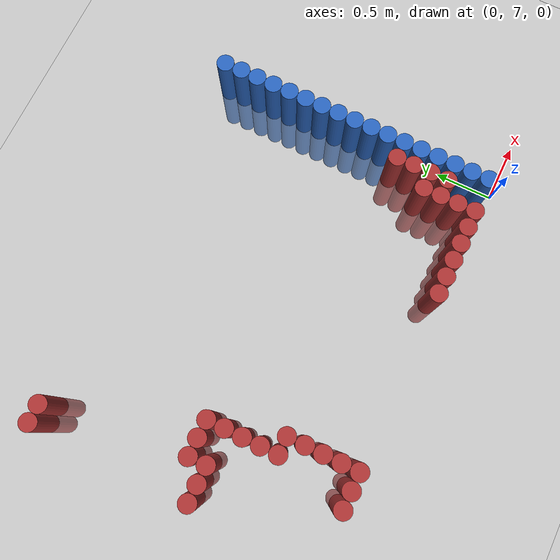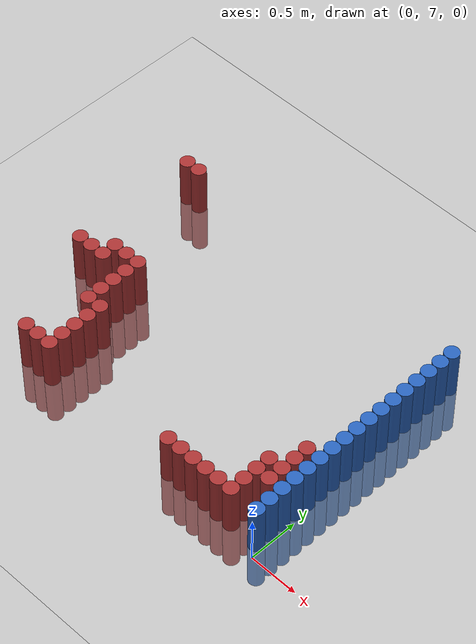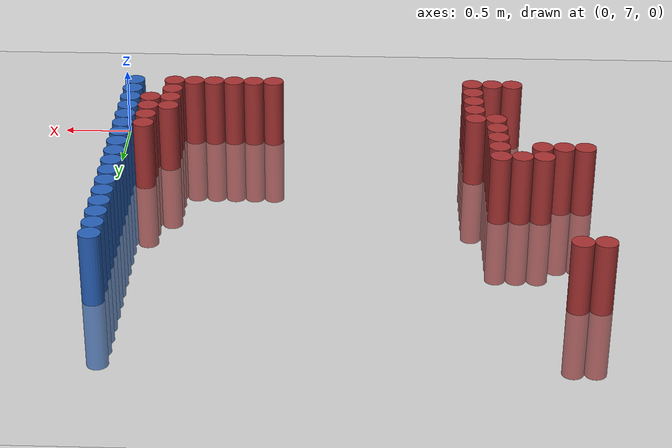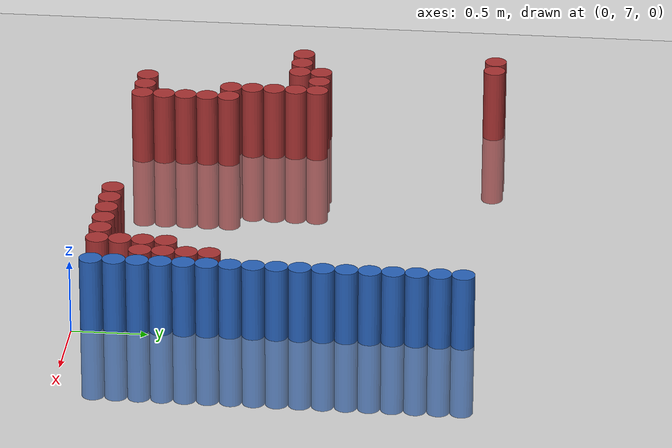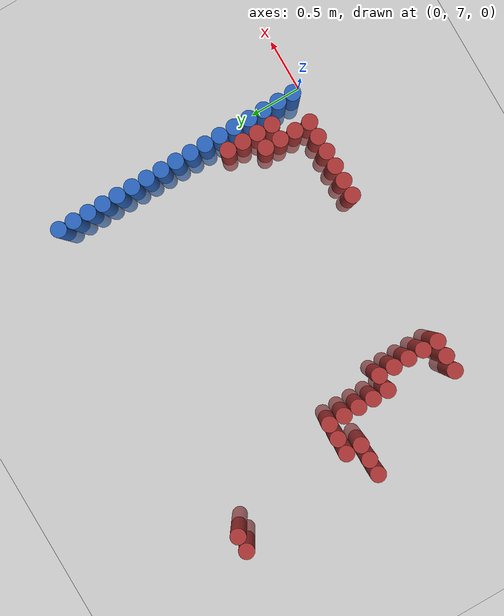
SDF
<sdf version="1.6">
 <world name="default">
  <model name="ground_plane">
   <static>1</static>
   <link name="link">
    <collision name="collision">
     <geometry><plane><normal>0 0 1</normal><size>100 100</size></plane></geometry>
     <surface><friction><ode><mu>100</mu><mu2>50</mu2></ode></friction></surface>
    </collision>
    <visual name="visual">
     <cast_shadows>0</cast_shadows>
     <geometry><plane><normal>0 0 1</normal><size>100 100</size></plane></geometry>
     <material>
      <script><uri>file://media/materials/scripts/gazebo.material</uri><name>Gazebo/Grey</name></script>
     </material>
    </visual>
   </link>
  </model>
  <model name="unit_cylinder_172">
   <static>1</static>
   <pose>-3.375000 8.175000 0.000000 0.000000 0.000000 0.000000</pose>
   <link name="link">
    <inertial>
     <mass>1</mass>
     <inertia><ixx>0.145833</ixx><ixy>0</ixy><ixz>0</ixz><iyy>0.145833</iyy><iyz>0</iyz><izz>0.125</izz></inertia>
    </inertial>
    <collision name="collision">
     <geometry><cylinder><radius>0.075000</radius><length>1</length></cylinder></geometry>
    </collision>
    <visual name="visual">
     <geometry><cylinder><radius>0.075000</radius><length>1</length></cylinder></geometry>
     <material>
      <ambient>0.648000 0.192000 0.192000 1</ambient>
      <diffuse>0.648000 0.192000 0.192000 1</diffuse>
     </material>
     <material>
      <script><name>Gazebo/Grey</name><uri>file://media/materials/scripts/gazebo.material</uri></script>
     </material>
    </visual>
   </link>
  </model>
  <model name="unit_cylinder_173">
   <static>1</static>
   <pose>-3.375000 9.525000 0.000000 0.000000 0.000000 0.000000</pose>
   <link name="link">
    <inertial>
     <mass>1</mass>
     <inertia><ixx>0.145833</ixx><ixy>0</ixy><ixz>0</ixz><iyy>0.145833</iyy><iyz>0</iyz><izz>0.125</izz></inertia>
    </inertial>
    <collision name="collision">
     <geometry><cylinder><radius>0.075000</radius><length>1</length></cylinder></geometry>
    </collision>
    <visual name="visual">
     <geometry><cylinder><radius>0.075000</radius><length>1</length></cylinder></geometry>
     <material>
      <ambient>0.648000 0.192000 0.192000 1</ambient>
      <diffuse>0.648000 0.192000 0.192000 1</diffuse>
     </material>
     <material>
      <script><name>Gazebo/Grey</name><uri>file://media/materials/scripts/gazebo.material</uri></script>
     </material>
    </visual>
   </link>
  </model>
  <model name="unit_cylinder_179">
   <static>1</static>
   <pose>-3.225000 8.175000 0.000000 0.000000 0.000000 0.000000</pose>
   <link name="link">
    <inertial>
     <mass>1</mass>
     <inertia><ixx>0.145833</ixx><ixy>0</ixy><ixz>0</ixz><iyy>0.145833</iyy><iyz>0</iyz><izz>0.125</izz></inertia>
    </inertial>
    <collision name="collision">
     <geometry><cylinder><radius>0.075000</radius><length>1</length></cylinder></geometry>
    </collision>
    <visual name="visual">
     <geometry><cylinder><radius>0.075000</radius><length>1</length></cylinder></geometry>
     <material>
      <ambient>0.648000 0.192000 0.192000 1</ambient>
      <diffuse>0.648000 0.192000 0.192000 1</diffuse>
     </material>
     <material>
      <script><name>Gazebo/Grey</name><uri>file://media/materials/scripts/gazebo.material</uri></script>
     </material>
    </visual>
   </link>
  </model>
  <model name="unit_cylinder_180">
   <static>1</static>
   <pose>-3.225000 9.525000 0.000000 0.000000 0.000000 0.000000</pose>
   <link name="link">
    <inertial>
     <mass>1</mass>
     <inertia><ixx>0.145833</ixx><ixy>0</ixy><ixz>0</ixz><iyy>0.145833</iyy><iyz>0</iyz><izz>0.125</izz></inertia>
    </inertial>
    <collision name="collision">
     <geometry><cylinder><radius>0.075000</radius><length>1</length></cylinder></geometry>
    </collision>
    <visual name="visual">
     <geometry><cylinder><radius>0.075000</radius><length>1</length></cylinder></geometry>
     <material>
      <ambient>0.648000 0.192000 0.192000 1</ambient>
      <diffuse>0.648000 0.192000 0.192000 1</diffuse>
     </material>
     <material>
      <script><name>Gazebo/Grey</name><uri>file://media/materials/scripts/gazebo.material</uri></script>
     </material>
    </visual>
   </link>
  </model>
  <model name="unit_cylinder_186">
   <static>1</static>
   <pose>-3.075000 8.175000 0.000000 0.000000 0.000000 0.000000</pose>
   <link name="link">
    <inertial>
     <mass>1</mass>
     <inertia><ixx>0.145833</ixx><ixy>0</ixy><ixz>0</ixz><iyy>0.145833</iyy><iyz>0</iyz><izz>0.125</izz></inertia>
    </inertial>
    <collision name="collision">
     <geometry><cylinder><radius>0.075000</radius><length>1</length></cylinder></geometry>
    </collision>
    <visual name="visual">
     <geometry><cylinder><radius>0.075000</radius><length>1</length></cylinder></geometry>
     <material>
      <ambient>0.648000 0.192000 0.192000 1</ambient>
      <diffuse>0.648000 0.192000 0.192000 1</diffuse>
     </material>
     <material>
      <script><name>Gazebo/Grey</name><uri>file://media/materials/scripts/gazebo.material</uri></script>
     </material>
    </visual>
   </link>
  </model>
  <model name="unit_cylinder_187">
   <static>1</static>
   <pose>-3.075000 8.325000 0.000000 0.000000 0.000000 0.000000</pose>
   <link name="link">
    <inertial>
     <mass>1</mass>
     <inertia><ixx>0.145833</ixx><ixy>0</ixy><ixz>0</ixz><iyy>0.145833</iyy><iyz>0</iyz><izz>0.125</izz></inertia>
    </inertial>
    <collision name="collision">
     <geometry><cylinder><radius>0.075000</radius><length>1</length></cylinder></geometry>
    </collision>
    <visual name="visual">
     <geometry><cylinder><radius>0.075000</radius><length>1</length></cylinder></geometry>
     <material>
      <ambient>0.648000 0.192000 0.192000 1</ambient>
      <diffuse>0.648000 0.192000 0.192000 1</diffuse>
     </material>
     <material>
      <script><name>Gazebo/Grey</name><uri>file://media/materials/scripts/gazebo.material</uri></script>
     </material>
    </visual>
   </link>
  </model>
  <model name="unit_cylinder_197">
   <static>1</static>
   <pose>-2.925000 7.125000 0.000000 0.000000 0.000000 0.000000</pose>
   <link name="link">
    <inertial>
     <mass>1</mass>
     <inertia><ixx>0.145833</ixx><ixy>0</ixy><ixz>0</ixz><iyy>0.145833</iyy><iyz>0</iyz><izz>0.125</izz></inertia>
    </inertial>
    <collision name="collision">
     <geometry><cylinder><radius>0.075000</radius><length>1</length></cylinder></geometry>
    </collision>
    <visual name="visual">
     <geometry><cylinder><radius>0.075000</radius><length>1</length></cylinder></geometry>
     <material>
      <ambient>0.648000 0.192000 0.192000 1</ambient>
      <diffuse>0.648000 0.192000 0.192000 1</diffuse>
     </material>
     <material>
      <script><name>Gazebo/Grey</name><uri>file://media/materials/scripts/gazebo.material</uri></script>
     </material>
    </visual>
   </link>
  </model>
  <model name="unit_cylinder_198">
   <static>1</static>
   <pose>-2.925000 8.325000 0.000000 0.000000 0.000000 0.000000</pose>
   <link name="link">
    <inertial>
     <mass>1</mass>
     <inertia><ixx>0.145833</ixx><ixy>0</ixy><ixz>0</ixz><iyy>0.145833</iyy><iyz>0</iyz><izz>0.125</izz></inertia>
    </inertial>
    <collision name="collision">
     <geometry><cylinder><radius>0.075000</radius><length>1</length></cylinder></geometry>
    </collision>
    <visual name="visual">
     <geometry><cylinder><radius>0.075000</radius><length>1</length></cylinder></geometry>
     <material>
      <ambient>0.648000 0.192000 0.192000 1</ambient>
      <diffuse>0.648000 0.192000 0.192000 1</diffuse>
     </material>
     <material>
      <script><name>Gazebo/Grey</name><uri>file://media/materials/scripts/gazebo.material</uri></script>
     </material>
    </visual>
   </link>
  </model>
  <model name="unit_cylinder_201">
   <static>1</static>
   <pose>-2.775000 7.125000 0.000000 0.000000 0.000000 0.000000</pose>
   <link name="link">
    <inertial>
     <mass>1</mass>
     <inertia><ixx>0.145833</ixx><ixy>0</ixy><ixz>0</ixz><iyy>0.145833</iyy><iyz>0</iyz><izz>0.125</izz></inertia>
    </inertial>
    <collision name="collision">
     <geometry><cylinder><radius>0.075000</radius><length>1</length></cylinder></geometry>
    </collision>
    <visual name="visual">
     <geometry><cylinder><radius>0.075000</radius><length>1</length></cylinder></geometry>
     <material>
      <ambient>0.648000 0.192000 0.192000 1</ambient>
      <diffuse>0.648000 0.192000 0.192000 1</diffuse>
     </material>
     <material>
      <script><name>Gazebo/Grey</name><uri>file://media/materials/scripts/gazebo.material</uri></script>
     </material>
    </visual>
   </link>
  </model>
  <model name="unit_cylinder_202">
   <static>1</static>
   <pose>-2.775000 7.725000 0.000000 0.000000 0.000000 0.000000</pose>
   <link name="link">
    <inertial>
     <mass>1</mass>
     <inertia><ixx>0.145833</ixx><ixy>0</ixy><ixz>0</ixz><iyy>0.145833</iyy><iyz>0</iyz><izz>0.125</izz></inertia>
    </inertial>
    <collision name="collision">
     <geometry><cylinder><radius>0.075000</radius><length>1</length></cylinder></geometry>
    </collision>
    <visual name="visual">
     <geometry><cylinder><radius>0.075000</radius><length>1</length></cylinder></geometry>
     <material>
      <ambient>0.648000 0.192000 0.192000 1</ambient>
      <diffuse>0.648000 0.192000 0.192000 1</diffuse>
     </material>
     <material>
      <script><name>Gazebo/Grey</name><uri>file://media/materials/scripts/gazebo.material</uri></script>
     </material>
    </visual>
   </link>
  </model>
  <model name="unit_cylinder_203">
   <static>1</static>
   <pose>-2.775000 7.875000 0.000000 0.000000 0.000000 0.000000</pose>
   <link name="link">
    <inertial>
     <mass>1</mass>
     <inertia><ixx>0.145833</ixx><ixy>0</ixy><ixz>0</ixz><iyy>0.145833</iyy><iyz>0</iyz><izz>0.125</izz></inertia>
    </inertial>
    <collision name="collision">
     <geometry><cylinder><radius>0.075000</radius><length>1</length></cylinder></geometry>
    </collision>
    <visual name="visual">
     <geometry><cylinder><radius>0.075000</radius><length>1</length></cylinder></geometry>
     <material>
      <ambient>0.648000 0.192000 0.192000 1</ambient>
      <diffuse>0.648000 0.192000 0.192000 1</diffuse>
     </material>
     <material>
      <script><name>Gazebo/Grey</name><uri>file://media/materials/scripts/gazebo.material</uri></script>
     </material>
    </visual>
   </link>
  </model>
  <model name="unit_cylinder_204">
   <static>1</static>
   <pose>-2.775000 8.025000 0.000000 0.000000 0.000000 0.000000</pose>
   <link name="link">
    <inertial>
     <mass>1</mass>
     <inertia><ixx>0.145833</ixx><ixy>0</ixy><ixz>0</ixz><iyy>0.145833</iyy><iyz>0</iyz><izz>0.125</izz></inertia>
    </inertial>
    <collision name="collision">
     <geometry><cylinder><radius>0.075000</radius><length>1</length></cylinder></geometry>
    </collision>
    <visual name="visual">
     <geometry><cylinder><radius>0.075000</radius><length>1</length></cylinder></geometry>
     <material>
      <ambient>0.648000 0.192000 0.192000 1</ambient>
      <diffuse>0.648000 0.192000 0.192000 1</diffuse>
     </material>
     <material>
      <script><name>Gazebo/Grey</name><uri>file://media/materials/scripts/gazebo.material</uri></script>
     </material>
    </visual>
   </link>
  </model>
  <model name="unit_cylinder_205">
   <static>1</static>
   <pose>-2.775000 8.175000 0.000000 0.000000 0.000000 0.000000</pose>
   <link name="link">
    <inertial>
     <mass>1</mass>
     <inertia><ixx>0.145833</ixx><ixy>0</ixy><ixz>0</ixz><iyy>0.145833</iyy><iyz>0</iyz><izz>0.125</izz></inertia>
    </inertial>
    <collision name="collision">
     <geometry><cylinder><radius>0.075000</radius><length>1</length></cylinder></geometry>
    </collision>
    <visual name="visual">
     <geometry><cylinder><radius>0.075000</radius><length>1</length></cylinder></geometry>
     <material>
      <ambient>0.648000 0.192000 0.192000 1</ambient>
      <diffuse>0.648000 0.192000 0.192000 1</diffuse>
     </material>
     <material>
      <script><name>Gazebo/Grey</name><uri>file://media/materials/scripts/gazebo.material</uri></script>
     </material>
    </visual>
   </link>
  </model>
  <model name="unit_cylinder_206">
   <static>1</static>
   <pose>-2.775000 8.325000 0.000000 0.000000 0.000000 0.000000</pose>
   <link name="link">
    <inertial>
     <mass>1</mass>
     <inertia><ixx>0.145833</ixx><ixy>0</ixy><ixz>0</ixz><iyy>0.145833</iyy><iyz>0</iyz><izz>0.125</izz></inertia>
    </inertial>
    <collision name="collision">
     <geometry><cylinder><radius>0.075000</radius><length>1</length></cylinder></geometry>
    </collision>
    <visual name="visual">
     <geometry><cylinder><radius>0.075000</radius><length>1</length></cylinder></geometry>
     <material>
      <ambient>0.648000 0.192000 0.192000 1</ambient>
      <diffuse>0.648000 0.192000 0.192000 1</diffuse>
     </material>
     <material>
      <script><name>Gazebo/Grey</name><uri>file://media/materials/scripts/gazebo.material</uri></script>
     </material>
    </visual>
   </link>
  </model>
  <model name="unit_cylinder_210">
   <static>1</static>
   <pose>-2.625000 7.125000 0.000000 0.000000 0.000000 0.000000</pose>
   <link name="link">
    <inertial>
     <mass>1</mass>
     <inertia><ixx>0.145833</ixx><ixy>0</ixy><ixz>0</ixz><iyy>0.145833</iyy><iyz>0</iyz><izz>0.125</izz></inertia>
    </inertial>
    <collision name="collision">
     <geometry><cylinder><radius>0.075000</radius><length>1</length></cylinder></geometry>
    </collision>
    <visual name="visual">
     <geometry><cylinder><radius>0.075000</radius><length>1</length></cylinder></geometry>
     <material>
      <ambient>0.648000 0.192000 0.192000 1</ambient>
      <diffuse>0.648000 0.192000 0.192000 1</diffuse>
     </material>
     <material>
      <script><name>Gazebo/Grey</name><uri>file://media/materials/scripts/gazebo.material</uri></script>
     </material>
    </visual>
   </link>
  </model>
  <model name="unit_cylinder_211">
   <static>1</static>
   <pose>-2.625000 7.275000 0.000000 0.000000 0.000000 0.000000</pose>
   <link name="link">
    <inertial>
     <mass>1</mass>
     <inertia><ixx>0.145833</ixx><ixy>0</ixy><ixz>0</ixz><iyy>0.145833</iyy><iyz>0</iyz><izz>0.125</izz></inertia>
    </inertial>
    <collision name="collision">
     <geometry><cylinder><radius>0.075000</radius><length>1</length></cylinder></geometry>
    </collision>
    <visual name="visual">
     <geometry><cylinder><radius>0.075000</radius><length>1</length></cylinder></geometry>
     <material>
      <ambient>0.648000 0.192000 0.192000 1</ambient>
      <diffuse>0.648000 0.192000 0.192000 1</diffuse>
     </material>
     <material>
      <script><name>Gazebo/Grey</name><uri>file://media/materials/scripts/gazebo.material</uri></script>
     </material>
    </visual>
   </link>
  </model>
  <model name="unit_cylinder_212">
   <static>1</static>
   <pose>-2.625000 7.425000 0.000000 0.000000 0.000000 0.000000</pose>
   <link name="link">
    <inertial>
     <mass>1</mass>
     <inertia><ixx>0.145833</ixx><ixy>0</ixy><ixz>0</ixz><iyy>0.145833</iyy><iyz>0</iyz><izz>0.125</izz></inertia>
    </inertial>
    <collision name="collision">
     <geometry><cylinder><radius>0.075000</radius><length>1</length></cylinder></geometry>
    </collision>
    <visual name="visual">
     <geometry><cylinder><radius>0.075000</radius><length>1</length></cylinder></geometry>
     <material>
      <ambient>0.648000 0.192000 0.192000 1</ambient>
      <diffuse>0.648000 0.192000 0.192000 1</diffuse>
     </material>
     <material>
      <script><name>Gazebo/Grey</name><uri>file://media/materials/scripts/gazebo.material</uri></script>
     </material>
    </visual>
   </link>
  </model>
  <model name="unit_cylinder_213">
   <static>1</static>
   <pose>-2.625000 7.575000 0.000000 0.000000 0.000000 0.000000</pose>
   <link name="link">
    <inertial>
     <mass>1</mass>
     <inertia><ixx>0.145833</ixx><ixy>0</ixy><ixz>0</ixz><iyy>0.145833</iyy><iyz>0</iyz><izz>0.125</izz></inertia>
    </inertial>
    <collision name="collision">
     <geometry><cylinder><radius>0.075000</radius><length>1</length></cylinder></geometry>
    </collision>
    <visual name="visual">
     <geometry><cylinder><radius>0.075000</radius><length>1</length></cylinder></geometry>
     <material>
      <ambient>0.648000 0.192000 0.192000 1</ambient>
      <diffuse>0.648000 0.192000 0.192000 1</diffuse>
     </material>
     <material>
      <script><name>Gazebo/Grey</name><uri>file://media/materials/scripts/gazebo.material</uri></script>
     </material>
    </visual>
   </link>
  </model>
  <model name="unit_cylinder_214">
   <static>1</static>
   <pose>-2.625000 7.725000 0.000000 0.000000 0.000000 0.000000</pose>
   <link name="link">
    <inertial>
     <mass>1</mass>
     <inertia><ixx>0.145833</ixx><ixy>0</ixy><ixz>0</ixz><iyy>0.145833</iyy><iyz>0</iyz><izz>0.125</izz></inertia>
    </inertial>
    <collision name="collision">
     <geometry><cylinder><radius>0.075000</radius><length>1</length></cylinder></geometry>
    </collision>
    <visual name="visual">
     <geometry><cylinder><radius>0.075000</radius><length>1</length></cylinder></geometry>
     <material>
      <ambient>0.648000 0.192000 0.192000 1</ambient>
      <diffuse>0.648000 0.192000 0.192000 1</diffuse>
     </material>
     <material>
      <script><name>Gazebo/Grey</name><uri>file://media/materials/scripts/gazebo.material</uri></script>
     </material>
    </visual>
   </link>
  </model>
  <model name="unit_cylinder_222">
   <static>1</static>
   <pose>-1.125000 7.125000 0.000000 0.000000 0.000000 0.000000</pose>
   <link name="link">
    <inertial>
     <mass>1</mass>
     <inertia><ixx>0.145833</ixx><ixy>0</ixy><ixz>0</ixz><iyy>0.145833</iyy><iyz>0</iyz><izz>0.125</izz></inertia>
    </inertial>
    <collision name="collision">
     <geometry><cylinder><radius>0.075000</radius><length>1</length></cylinder></geometry>
    </collision>
    <visual name="visual">
     <geometry><cylinder><radius>0.075000</radius><length>1</length></cylinder></geometry>
     <material>
      <ambient>0.648000 0.192000 0.192000 1</ambient>
      <diffuse>0.648000 0.192000 0.192000 1</diffuse>
     </material>
     <material>
      <script><name>Gazebo/Grey</name><uri>file://media/materials/scripts/gazebo.material</uri></script>
     </material>
    </visual>
   </link>
  </model>
  <model name="unit_cylinder_225">
   <static>1</static>
   <pose>-0.975000 7.125000 0.000000 0.000000 0.000000 0.000000</pose>
   <link name="link">
    <inertial>
     <mass>1</mass>
     <inertia><ixx>0.145833</ixx><ixy>0</ixy><ixz>0</ixz><iyy>0.145833</iyy><iyz>0</iyz><izz>0.125</izz></inertia>
    </inertial>
    <collision name="collision">
     <geometry><cylinder><radius>0.075000</radius><length>1</length></cylinder></geometry>
    </collision>
    <visual name="visual">
     <geometry><cylinder><radius>0.075000</radius><length>1</length></cylinder></geometry>
     <material>
      <ambient>0.648000 0.192000 0.192000 1</ambient>
      <diffuse>0.648000 0.192000 0.192000 1</diffuse>
     </material>
     <material>
      <script><name>Gazebo/Grey</name><uri>file://media/materials/scripts/gazebo.material</uri></script>
     </material>
    </visual>
   </link>
  </model>
  <model name="unit_cylinder_230">
   <static>1</static>
   <pose>-0.825000 7.125000 0.000000 0.000000 0.000000 0.000000</pose>
   <link name="link">
    <inertial>
     <mass>1</mass>
     <inertia><ixx>0.145833</ixx><ixy>0</ixy><ixz>0</ixz><iyy>0.145833</iyy><iyz>0</iyz><izz>0.125</izz></inertia>
    </inertial>
    <collision name="collision">
     <geometry><cylinder><radius>0.075000</radius><length>1</length></cylinder></geometry>
    </collision>
    <visual name="visual">
     <geometry><cylinder><radius>0.075000</radius><length>1</length></cylinder></geometry>
     <material>
      <ambient>0.648000 0.192000 0.192000 1</ambient>
      <diffuse>0.648000 0.192000 0.192000 1</diffuse>
     </material>
     <material>
      <script><name>Gazebo/Grey</name><uri>file://media/materials/scripts/gazebo.material</uri></script>
     </material>
    </visual>
   </link>
  </model>
  <model name="unit_cylinder_239">
   <static>1</static>
   <pose>-0.675000 7.125000 0.000000 0.000000 0.000000 0.000000</pose>
   <link name="link">
    <inertial>
     <mass>1</mass>
     <inertia><ixx>0.145833</ixx><ixy>0</ixy><ixz>0</ixz><iyy>0.145833</iyy><iyz>0</iyz><izz>0.125</izz></inertia>
    </inertial>
    <collision name="collision">
     <geometry><cylinder><radius>0.075000</radius><length>1</length></cylinder></geometry>
    </collision>
    <visual name="visual">
     <geometry><cylinder><radius>0.075000</radius><length>1</length></cylinder></geometry>
     <material>
      <ambient>0.648000 0.192000 0.192000 1</ambient>
      <diffuse>0.648000 0.192000 0.192000 1</diffuse>
     </material>
     <material>
      <script><name>Gazebo/Grey</name><uri>file://media/materials/scripts/gazebo.material</uri></script>
     </material>
    </visual>
   </link>
  </model>
  <model name="unit_cylinder_241">
   <static>1</static>
   <pose>-0.525000 7.125000 0.000000 0.000000 0.000000 0.000000</pose>
   <link name="link">
    <inertial>
     <mass>1</mass>
     <inertia><ixx>0.145833</ixx><ixy>0</ixy><ixz>0</ixz><iyy>0.145833</iyy><iyz>0</iyz><izz>0.125</izz></inertia>
    </inertial>
    <collision name="collision">
     <geometry><cylinder><radius>0.075000</radius><length>1</length></cylinder></geometry>
    </collision>
    <visual name="visual">
     <geometry><cylinder><radius>0.075000</radius><length>1</length></cylinder></geometry>
     <material>
      <ambient>0.648000 0.192000 0.192000 1</ambient>
      <diffuse>0.648000 0.192000 0.192000 1</diffuse>
     </material>
     <material>
      <script><name>Gazebo/Grey</name><uri>file://media/materials/scripts/gazebo.material</uri></script>
     </material>
    </visual>
   </link>
  </model>
  <model name="unit_cylinder_253">
   <static>1</static>
   <pose>-0.375000 7.125000 0.000000 0.000000 0.000000 0.000000</pose>
   <link name="link">
    <inertial>
     <mass>1</mass>
     <inertia><ixx>0.145833</ixx><ixy>0</ixy><ixz>0</ixz><iyy>0.145833</iyy><iyz>0</iyz><izz>0.125</izz></inertia>
    </inertial>
    <collision name="collision">
     <geometry><cylinder><radius>0.075000</radius><length>1</length></cylinder></geometry>
    </collision>
    <visual name="visual">
     <geometry><cylinder><radius>0.075000</radius><length>1</length></cylinder></geometry>
     <material>
      <ambient>0.648000 0.192000 0.192000 1</ambient>
      <diffuse>0.648000 0.192000 0.192000 1</diffuse>
     </material>
     <material>
      <script><name>Gazebo/Grey</name><uri>file://media/materials/scripts/gazebo.material</uri></script>
     </material>
    </visual>
   </link>
  </model>
  <model name="unit_cylinder_254">
   <static>1</static>
   <pose>-0.375000 7.275000 0.000000 0.000000 0.000000 0.000000</pose>
   <link name="link">
    <inertial>
     <mass>1</mass>
     <inertia><ixx>0.145833</ixx><ixy>0</ixy><ixz>0</ixz><iyy>0.145833</iyy><iyz>0</iyz><izz>0.125</izz></inertia>
    </inertial>
    <collision name="collision">
     <geometry><cylinder><radius>0.075000</radius><length>1</length></cylinder></geometry>
    </collision>
    <visual name="visual">
     <geometry><cylinder><radius>0.075000</radius><length>1</length></cylinder></geometry>
     <material>
      <ambient>0.648000 0.192000 0.192000 1</ambient>
      <diffuse>0.648000 0.192000 0.192000 1</diffuse>
     </material>
     <material>
      <script><name>Gazebo/Grey</name><uri>file://media/materials/scripts/gazebo.material</uri></script>
     </material>
    </visual>
   </link>
  </model>
  <model name="unit_cylinder_255">
   <static>1</static>
   <pose>-0.375000 7.425000 0.000000 0.000000 0.000000 0.000000</pose>
   <link name="link">
    <inertial>
     <mass>1</mass>
     <inertia><ixx>0.145833</ixx><ixy>0</ixy><ixz>0</ixz><iyy>0.145833</iyy><iyz>0</iyz><izz>0.125</izz></inertia>
    </inertial>
    <collision name="collision">
     <geometry><cylinder><radius>0.075000</radius><length>1</length></cylinder></geometry>
    </collision>
    <visual name="visual">
     <geometry><cylinder><radius>0.075000</radius><length>1</length></cylinder></geometry>
     <material>
      <ambient>0.648000 0.192000 0.192000 1</ambient>
      <diffuse>0.648000 0.192000 0.192000 1</diffuse>
     </material>
     <material>
      <script><name>Gazebo/Grey</name><uri>file://media/materials/scripts/gazebo.material</uri></script>
     </material>
    </visual>
   </link>
  </model>
  <model name="unit_cylinder_256">
   <static>1</static>
   <pose>-0.375000 7.575000 0.000000 0.000000 0.000000 0.000000</pose>
   <link name="link">
    <inertial>
     <mass>1</mass>
     <inertia><ixx>0.145833</ixx><ixy>0</ixy><ixz>0</ixz><iyy>0.145833</iyy><iyz>0</iyz><izz>0.125</izz></inertia>
    </inertial>
    <collision name="collision">
     <geometry><cylinder><radius>0.075000</radius><length>1</length></cylinder></geometry>
    </collision>
    <visual name="visual">
     <geometry><cylinder><radius>0.075000</radius><length>1</length></cylinder></geometry>
     <material>
      <ambient>0.648000 0.192000 0.192000 1</ambient>
      <diffuse>0.648000 0.192000 0.192000 1</diffuse>
     </material>
     <material>
      <script><name>Gazebo/Grey</name><uri>file://media/materials/scripts/gazebo.material</uri></script>
     </material>
    </visual>
   </link>
  </model>
  <model name="unit_cylinder_259">
   <static>1</static>
   <pose>-0.225000 7.425000 0.000000 0.000000 0.000000 0.000000</pose>
   <link name="link">
    <inertial>
     <mass>1</mass>
     <inertia><ixx>0.145833</ixx><ixy>0</ixy><ixz>0</ixz><iyy>0.145833</iyy><iyz>0</iyz><izz>0.125</izz></inertia>
    </inertial>
    <collision name="collision">
     <geometry><cylinder><radius>0.075000</radius><length>1</length></cylinder></geometry>
    </collision>
    <visual name="visual">
     <geometry><cylinder><radius>0.075000</radius><length>1</length></cylinder></geometry>
     <material>
      <ambient>0.648000 0.192000 0.192000 1</ambient>
      <diffuse>0.648000 0.192000 0.192000 1</diffuse>
     </material>
     <material>
      <script><name>Gazebo/Grey</name><uri>file://media/materials/scripts/gazebo.material</uri></script>
     </material>
    </visual>
   </link>
  </model>
  <model name="unit_cylinder_260">
   <static>1</static>
   <pose>-0.225000 7.575000 0.000000 0.000000 0.000000 0.000000</pose>
   <link name="link">
    <inertial>
     <mass>1</mass>
     <inertia><ixx>0.145833</ixx><ixy>0</ixy><ixz>0</ixz><iyy>0.145833</iyy><iyz>0</iyz><izz>0.125</izz></inertia>
    </inertial>
    <collision name="collision">
     <geometry><cylinder><radius>0.075000</radius><length>1</length></cylinder></geometry>
    </collision>
    <visual name="visual">
     <geometry><cylinder><radius>0.075000</radius><length>1</length></cylinder></geometry>
     <material>
      <ambient>0.648000 0.192000 0.192000 1</ambient>
      <diffuse>0.648000 0.192000 0.192000 1</diffuse>
     </material>
     <material>
      <script><name>Gazebo/Grey</name><uri>file://media/materials/scripts/gazebo.material</uri></script>
     </material>
    </visual>
   </link>
  </model>
  <model name="unit_cylinder_261">
   <static>1</static>
   <pose>-0.225000 7.725000 0.000000 0.000000 0.000000 0.000000</pose>
   <link name="link">
    <inertial>
     <mass>1</mass>
     <inertia><ixx>0.145833</ixx><ixy>0</ixy><ixz>0</ixz><iyy>0.145833</iyy><iyz>0</iyz><izz>0.125</izz></inertia>
    </inertial>
    <collision name="collision">
     <geometry><cylinder><radius>0.075000</radius><length>1</length></cylinder></geometry>
    </collision>
    <visual name="visual">
     <geometry><cylinder><radius>0.075000</radius><length>1</length></cylinder></geometry>
     <material>
      <ambient>0.648000 0.192000 0.192000 1</ambient>
      <diffuse>0.648000 0.192000 0.192000 1</diffuse>
     </material>
     <material>
      <script><name>Gazebo/Grey</name><uri>file://media/materials/scripts/gazebo.material</uri></script>
     </material>
    </visual>
   </link>
  </model>
  <model name="unit_cylinder_262">
   <static>1</static>
   <pose>-0.225000 7.875000 0.000000 0.000000 0.000000 0.000000</pose>
   <link name="link">
    <inertial>
     <mass>1</mass>
     <inertia><ixx>0.145833</ixx><ixy>0</ixy><ixz>0</ixz><iyy>0.145833</iyy><iyz>0</iyz><izz>0.125</izz></inertia>
    </inertial>
    <collision name="collision">
     <geometry><cylinder><radius>0.075000</radius><length>1</length></cylinder></geometry>
    </collision>
    <visual name="visual">
     <geometry><cylinder><radius>0.075000</radius><length>1</length></cylinder></geometry>
     <material>
      <ambient>0.648000 0.192000 0.192000 1</ambient>
      <diffuse>0.648000 0.192000 0.192000 1</diffuse>
     </material>
     <material>
      <script><name>Gazebo/Grey</name><uri>file://media/materials/scripts/gazebo.material</uri></script>
     </material>
    </visual>
   </link>
  </model>
  <model name="unit_cylinder_276">
   <static>1</static>
   <pose>-0.075000 7.125000 0.000000 0.000000 0.000000 0.000000</pose>
   <link name="link">
    <inertial>
     <mass>1</mass>
     <inertia><ixx>0.145833</ixx><ixy>0</ixy><ixz>0</ixz><iyy>0.145833</iyy><iyz>0</iyz><izz>0.125</izz></inertia>
    </inertial>
    <collision name="collision">
     <geometry><cylinder><radius>0.075000</radius><length>1</length></cylinder></geometry>
    </collision>
    <visual name="visual">
     <geometry><cylinder><radius>0.075000</radius><length>1</length></cylinder></geometry>
     <material>
      <ambient>0.152000 0.379000 0.720000 1</ambient>
      <diffuse>0.152000 0.379000 0.720000 1</diffuse>
     </material>
     <material>
      <script><name>Gazebo/Grey</name><uri>file://media/materials/scripts/gazebo.material</uri></script>
     </material>
    </visual>
   </link>
  </model>
  <model name="unit_cylinder_277">
   <static>1</static>
   <pose>-0.075000 7.275000 0.000000 0.000000 0.000000 0.000000</pose>
   <link name="link">
    <inertial>
     <mass>1</mass>
     <inertia><ixx>0.145833</ixx><ixy>0</ixy><ixz>0</ixz><iyy>0.145833</iyy><iyz>0</iyz><izz>0.125</izz></inertia>
    </inertial>
    <collision name="collision">
     <geometry><cylinder><radius>0.075000</radius><length>1</length></cylinder></geometry>
    </collision>
    <visual name="visual">
     <geometry><cylinder><radius>0.075000</radius><length>1</length></cylinder></geometry>
     <material>
      <ambient>0.152000 0.379000 0.720000 1</ambient>
      <diffuse>0.152000 0.379000 0.720000 1</diffuse>
     </material>
     <material>
      <script><name>Gazebo/Grey</name><uri>file://media/materials/scripts/gazebo.material</uri></script>
     </material>
    </visual>
   </link>
  </model>
  <model name="unit_cylinder_278">
   <static>1</static>
   <pose>-0.075000 7.425000 0.000000 0.000000 0.000000 0.000000</pose>
   <link name="link">
    <inertial>
     <mass>1</mass>
     <inertia><ixx>0.145833</ixx><ixy>0</ixy><ixz>0</ixz><iyy>0.145833</iyy><iyz>0</iyz><izz>0.125</izz></inertia>
    </inertial>
    <collision name="collision">
     <geometry><cylinder><radius>0.075000</radius><length>1</length></cylinder></geometry>
    </collision>
    <visual name="visual">
     <geometry><cylinder><radius>0.075000</radius><length>1</length></cylinder></geometry>
     <material>
      <ambient>0.152000 0.379000 0.720000 1</ambient>
      <diffuse>0.152000 0.379000 0.720000 1</diffuse>
     </material>
     <material>
      <script><name>Gazebo/Grey</name><uri>file://media/materials/scripts/gazebo.material</uri></script>
     </material>
    </visual>
   </link>
  </model>
  <model name="unit_cylinder_279">
   <static>1</static>
   <pose>-0.075000 7.575000 0.000000 0.000000 0.000000 0.000000</pose>
   <link name="link">
    <inertial>
     <mass>1</mass>
     <inertia><ixx>0.145833</ixx><ixy>0</ixy><ixz>0</ixz><iyy>0.145833</iyy><iyz>0</iyz><izz>0.125</izz></inertia>
    </inertial>
    <collision name="collision">
     <geometry><cylinder><radius>0.075000</radius><length>1</length></cylinder></geometry>
    </collision>
    <visual name="visual">
     <geometry><cylinder><radius>0.075000</radius><length>1</length></cylinder></geometry>
     <material>
      <ambient>0.152000 0.379000 0.720000 1</ambient>
      <diffuse>0.152000 0.379000 0.720000 1</diffuse>
     </material>
     <material>
      <script><name>Gazebo/Grey</name><uri>file://media/materials/scripts/gazebo.material</uri></script>
     </material>
    </visual>
   </link>
  </model>
  <model name="unit_cylinder_280">
   <static>1</static>
   <pose>-0.075000 7.725000 0.000000 0.000000 0.000000 0.000000</pose>
   <link name="link">
    <inertial>
     <mass>1</mass>
     <inertia><ixx>0.145833</ixx><ixy>0</ixy><ixz>0</ixz><iyy>0.145833</iyy><iyz>0</iyz><izz>0.125</izz></inertia>
    </inertial>
    <collision name="collision">
     <geometry><cylinder><radius>0.075000</radius><length>1</length></cylinder></geometry>
    </collision>
    <visual name="visual">
     <geometry><cylinder><radius>0.075000</radius><length>1</length></cylinder></geometry>
     <material>
      <ambient>0.152000 0.379000 0.720000 1</ambient>
      <diffuse>0.152000 0.379000 0.720000 1</diffuse>
     </material>
     <material>
      <script><name>Gazebo/Grey</name><uri>file://media/materials/scripts/gazebo.material</uri></script>
     </material>
    </visual>
   </link>
  </model>
  <model name="unit_cylinder_281">
   <static>1</static>
   <pose>-0.075000 7.875000 0.000000 0.000000 0.000000 0.000000</pose>
   <link name="link">
    <inertial>
     <mass>1</mass>
     <inertia><ixx>0.145833</ixx><ixy>0</ixy><ixz>0</ixz><iyy>0.145833</iyy><iyz>0</iyz><izz>0.125</izz></inertia>
    </inertial>
    <collision name="collision">
     <geometry><cylinder><radius>0.075000</radius><length>1</length></cylinder></geometry>
    </collision>
    <visual name="visual">
     <geometry><cylinder><radius>0.075000</radius><length>1</length></cylinder></geometry>
     <material>
      <ambient>0.152000 0.379000 0.720000 1</ambient>
      <diffuse>0.152000 0.379000 0.720000 1</diffuse>
     </material>
     <material>
      <script><name>Gazebo/Grey</name><uri>file://media/materials/scripts/gazebo.material</uri></script>
     </material>
    </visual>
   </link>
  </model>
  <model name="unit_cylinder_282">
   <static>1</static>
   <pose>-0.075000 8.025000 0.000000 0.000000 0.000000 0.000000</pose>
   <link name="link">
    <inertial>
     <mass>1</mass>
     <inertia><ixx>0.145833</ixx><ixy>0</ixy><ixz>0</ixz><iyy>0.145833</iyy><iyz>0</iyz><izz>0.125</izz></inertia>
    </inertial>
    <collision name="collision">
     <geometry><cylinder><radius>0.075000</radius><length>1</length></cylinder></geometry>
    </collision>
    <visual name="visual">
     <geometry><cylinder><radius>0.075000</radius><length>1</length></cylinder></geometry>
     <material>
      <ambient>0.152000 0.379000 0.720000 1</ambient>
      <diffuse>0.152000 0.379000 0.720000 1</diffuse>
     </material>
     <material>
      <script><name>Gazebo/Grey</name><uri>file://media/materials/scripts/gazebo.material</uri></script>
     </material>
    </visual>
   </link>
  </model>
  <model name="unit_cylinder_283">
   <static>1</static>
   <pose>-0.075000 8.175000 0.000000 0.000000 0.000000 0.000000</pose>
   <link name="link">
    <inertial>
     <mass>1</mass>
     <inertia><ixx>0.145833</ixx><ixy>0</ixy><ixz>0</ixz><iyy>0.145833</iyy><iyz>0</iyz><izz>0.125</izz></inertia>
    </inertial>
    <collision name="collision">
     <geometry><cylinder><radius>0.075000</radius><length>1</length></cylinder></geometry>
    </collision>
    <visual name="visual">
     <geometry><cylinder><radius>0.075000</radius><length>1</length></cylinder></geometry>
     <material>
      <ambient>0.152000 0.379000 0.720000 1</ambient>
      <diffuse>0.152000 0.379000 0.720000 1</diffuse>
     </material>
     <material>
      <script><name>Gazebo/Grey</name><uri>file://media/materials/scripts/gazebo.material</uri></script>
     </material>
    </visual>
   </link>
  </model>
  <model name="unit_cylinder_284">
   <static>1</static>
   <pose>-0.075000 8.325000 0.000000 0.000000 0.000000 0.000000</pose>
   <link name="link">
    <inertial>
     <mass>1</mass>
     <inertia><ixx>0.145833</ixx><ixy>0</ixy><ixz>0</ixz><iyy>0.145833</iyy><iyz>0</iyz><izz>0.125</izz></inertia>
    </inertial>
    <collision name="collision">
     <geometry><cylinder><radius>0.075000</radius><length>1</length></cylinder></geometry>
    </collision>
    <visual name="visual">
     <geometry><cylinder><radius>0.075000</radius><length>1</length></cylinder></geometry>
     <material>
      <ambient>0.152000 0.379000 0.720000 1</ambient>
      <diffuse>0.152000 0.379000 0.720000 1</diffuse>
     </material>
     <material>
      <script><name>Gazebo/Grey</name><uri>file://media/materials/scripts/gazebo.material</uri></script>
     </material>
    </visual>
   </link>
  </model>
  <model name="unit_cylinder_285">
   <static>1</static>
   <pose>-0.075000 8.475000 0.000000 0.000000 0.000000 0.000000</pose>
   <link name="link">
    <inertial>
     <mass>1</mass>
     <inertia><ixx>0.145833</ixx><ixy>0</ixy><ixz>0</ixz><iyy>0.145833</iyy><iyz>0</iyz><izz>0.125</izz></inertia>
    </inertial>
    <collision name="collision">
     <geometry><cylinder><radius>0.075000</radius><length>1</length></cylinder></geometry>
    </collision>
    <visual name="visual">
     <geometry><cylinder><radius>0.075000</radius><length>1</length></cylinder></geometry>
     <material>
      <ambient>0.152000 0.379000 0.720000 1</ambient>
      <diffuse>0.152000 0.379000 0.720000 1</diffuse>
     </material>
     <material>
      <script><name>Gazebo/Grey</name><uri>file://media/materials/scripts/gazebo.material</uri></script>
     </material>
    </visual>
   </link>
  </model>
  <model name="unit_cylinder_286">
   <static>1</static>
   <pose>-0.075000 8.625000 0.000000 0.000000 0.000000 0.000000</pose>
   <link name="link">
    <inertial>
     <mass>1</mass>
     <inertia><ixx>0.145833</ixx><ixy>0</ixy><ixz>0</ixz><iyy>0.145833</iyy><iyz>0</iyz><izz>0.125</izz></inertia>
    </inertial>
    <collision name="collision">
     <geometry><cylinder><radius>0.075000</radius><length>1</length></cylinder></geometry>
    </collision>
    <visual name="visual">
     <geometry><cylinder><radius>0.075000</radius><length>1</length></cylinder></geometry>
     <material>
      <ambient>0.152000 0.379000 0.720000 1</ambient>
      <diffuse>0.152000 0.379000 0.720000 1</diffuse>
     </material>
     <material>
      <script><name>Gazebo/Grey</name><uri>file://media/materials/scripts/gazebo.material</uri></script>
     </material>
    </visual>
   </link>
  </model>
  <model name="unit_cylinder_287">
   <static>1</static>
   <pose>-0.075000 8.775000 0.000000 0.000000 0.000000 0.000000</pose>
   <link name="link">
    <inertial>
     <mass>1</mass>
     <inertia><ixx>0.145833</ixx><ixy>0</ixy><ixz>0</ixz><iyy>0.145833</iyy><iyz>0</iyz><izz>0.125</izz></inertia>
    </inertial>
    <collision name="collision">
     <geometry><cylinder><radius>0.075000</radius><length>1</length></cylinder></geometry>
    </collision>
    <visual name="visual">
     <geometry><cylinder><radius>0.075000</radius><length>1</length></cylinder></geometry>
     <material>
      <ambient>0.152000 0.379000 0.720000 1</ambient>
      <diffuse>0.152000 0.379000 0.720000 1</diffuse>
     </material>
     <material>
      <script><name>Gazebo/Grey</name><uri>file://media/materials/scripts/gazebo.material</uri></script>
     </material>
    </visual>
   </link>
  </model>
  <model name="unit_cylinder_288">
   <static>1</static>
   <pose>-0.075000 8.925000 0.000000 0.000000 0.000000 0.000000</pose>
   <link name="link">
    <inertial>
     <mass>1</mass>
     <inertia><ixx>0.145833</ixx><ixy>0</ixy><ixz>0</ixz><iyy>0.145833</iyy><iyz>0</iyz><izz>0.125</izz></inertia>
    </inertial>
    <collision name="collision">
     <geometry><cylinder><radius>0.075000</radius><length>1</length></cylinder></geometry>
    </collision>
    <visual name="visual">
     <geometry><cylinder><radius>0.075000</radius><length>1</length></cylinder></geometry>
     <material>
      <ambient>0.152000 0.379000 0.720000 1</ambient>
      <diffuse>0.152000 0.379000 0.720000 1</diffuse>
     </material>
     <material>
      <script><name>Gazebo/Grey</name><uri>file://media/materials/scripts/gazebo.material</uri></script>
     </material>
    </visual>
   </link>
  </model>
  <model name="unit_cylinder_289">
   <static>1</static>
   <pose>-0.075000 9.075000 0.000000 0.000000 0.000000 0.000000</pose>
   <link name="link">
    <inertial>
     <mass>1</mass>
     <inertia><ixx>0.145833</ixx><ixy>0</ixy><ixz>0</ixz><iyy>0.145833</iyy><iyz>0</iyz><izz>0.125</izz></inertia>
    </inertial>
    <collision name="collision">
     <geometry><cylinder><radius>0.075000</radius><length>1</length></cylinder></geometry>
    </collision>
    <visual name="visual">
     <geometry><cylinder><radius>0.075000</radius><length>1</length></cylinder></geometry>
     <material>
      <ambient>0.152000 0.379000 0.720000 1</ambient>
      <diffuse>0.152000 0.379000 0.720000 1</diffuse>
     </material>
     <material>
      <script><name>Gazebo/Grey</name><uri>file://media/materials/scripts/gazebo.material</uri></script>
     </material>
    </visual>
   </link>
  </model>
  <model name="unit_cylinder_290">
   <static>1</static>
   <pose>-0.075000 9.225000 0.000000 0.000000 0.000000 0.000000</pose>
   <link name="link">
    <inertial>
     <mass>1</mass>
     <inertia><ixx>0.145833</ixx><ixy>0</ixy><ixz>0</ixz><iyy>0.145833</iyy><iyz>0</iyz><izz>0.125</izz></inertia>
    </inertial>
    <collision name="collision">
     <geometry><cylinder><radius>0.075000</radius><length>1</length></cylinder></geometry>
    </collision>
    <visual name="visual">
     <geometry><cylinder><radius>0.075000</radius><length>1</length></cylinder></geometry>
     <material>
      <ambient>0.152000 0.379000 0.720000 1</ambient>
      <diffuse>0.152000 0.379000 0.720000 1</diffuse>
     </material>
     <material>
      <script><name>Gazebo/Grey</name><uri>file://media/materials/scripts/gazebo.material</uri></script>
     </material>
    </visual>
   </link>
  </model>
  <model name="unit_cylinder_291">
   <static>1</static>
   <pose>-0.075000 9.375000 0.000000 0.000000 0.000000 0.000000</pose>
   <link name="link">
    <inertial>
     <mass>1</mass>
     <inertia><ixx>0.145833</ixx><ixy>0</ixy><ixz>0</ixz><iyy>0.145833</iyy><iyz>0</iyz><izz>0.125</izz></inertia>
    </inertial>
    <collision name="collision">
     <geometry><cylinder><radius>0.075000</radius><length>1</length></cylinder></geometry>
    </collision>
    <visual name="visual">
     <geometry><cylinder><radius>0.075000</radius><length>1</length></cylinder></geometry>
     <material>
      <ambient>0.152000 0.379000 0.720000 1</ambient>
      <diffuse>0.152000 0.379000 0.720000 1</diffuse>
     </material>
     <material>
      <script><name>Gazebo/Grey</name><uri>file://media/materials/scripts/gazebo.material</uri></script>
     </material>
    </visual>
   </link>
  </model>
  <model name="unit_cylinder_292">
   <static>1</static>
   <pose>-0.075000 9.525000 0.000000 0.000000 0.000000 0.000000</pose>
   <link name="link">
    <inertial>
     <mass>1</mass>
     <inertia><ixx>0.145833</ixx><ixy>0</ixy><ixz>0</ixz><iyy>0.145833</iyy><iyz>0</iyz><izz>0.125</izz></inertia>
    </inertial>
    <collision name="collision">
     <geometry><cylinder><radius>0.075000</radius><length>1</length></cylinder></geometry>
    </collision>
    <visual name="visual">
     <geometry><cylinder><radius>0.075000</radius><length>1</length></cylinder></geometry>
     <material>
      <ambient>0.152000 0.379000 0.720000 1</ambient>
      <diffuse>0.152000 0.379000 0.720000 1</diffuse>
     </material>
     <material>
      <script><name>Gazebo/Grey</name><uri>file://media/materials/scripts/gazebo.material</uri></script>
     </material>
    </visual>
   </link>
  </model>
 </world>
</sdf>
